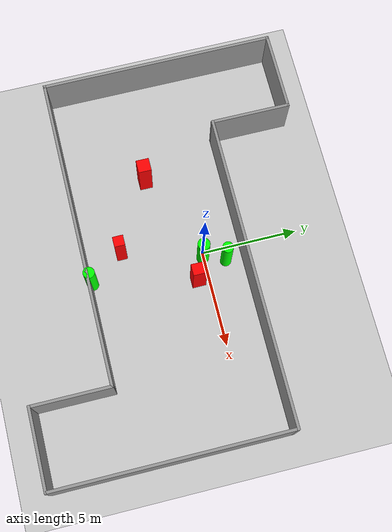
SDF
<sdf version="1.7">
 <world name="default">
  <light name="sun" type="directional">
   <pose>0 0 10 0 -0 0</pose>
   <diffuse>0.8 0.8 0.8 1</diffuse>
   <specular>0.2 0.2 0.2 1</specular>
   <attenuation>
    <range>1000</range>
    <constant>0.9</constant>
    <linear>0.01</linear>
    <quadratic>0.001</quadratic>
   </attenuation>
   <direction>-0.5 0.1 -0.9</direction>
   <spot><inner_angle>0</inner_angle><outer_angle>0</outer_angle><falloff>0</falloff></spot>
  </light>
  <model name="ground_plane">
   <static>1</static>
   <link name="link">
    <collision name="collision">
     <geometry><plane><normal>0 0 1</normal><size>100 100</size></plane></geometry>
     <surface>
      <contact><collide_bitmask>65535</collide_bitmask></contact>
      <friction><ode><mu>100</mu><mu2>50</mu2></ode></friction>
     </surface>
    </collision>
    <visual name="visual">
     <cast_shadows>0</cast_shadows>
     <geometry><plane><normal>0 0 1</normal><size>100 100</size></plane></geometry>
     <material>
      <script><uri>file://media/materials/scripts/gazebo.material</uri><name>Gazebo/Grey</name></script>
     </material>
    </visual>
   </link>
  </model>
  <gravity>0 0 -9.8</gravity>
  <magnetic_field>6e-06 2.3e-05 -4.2e-05</magnetic_field>
  <atmosphere type="adiabatic"/>
  <physics type="ode">
   <max_step_size>0.001</max_step_size>
   <real_time_factor>1</real_time_factor>
   <real_time_update_rate>1000</real_time_update_rate>
  </physics>
  <scene><ambient>0.4 0.4 0.4 1</ambient><background>0.7 0.7 0.7 1</background><shadows>1</shadows></scene>
  <spherical_coordinates>
   <surface_model>EARTH_WGS84</surface_model>
   <latitude_deg>0</latitude_deg>
   <longitude_deg>0</longitude_deg>
   <elevation>0</elevation>
   <heading_deg>0</heading_deg>
  </spherical_coordinates>
  <model name="my_base_walls">
   <link name="Wall_13">
    <collision name="Wall_13_Collision">
     <geometry><box><size>12.15 0.15 2.5</size></box></geometry>
     <pose>0 0 1.25 0 -0 0</pose>
    </collision>
    <visual name="Wall_13_Visual">
     <pose>0 0 1.25 0 -0 0</pose>
     <geometry><box><size>12.15 0.15 2.5</size></box></geometry>
     <material>
      <script><uri>file://media/materials/scripts/gazebo.material</uri><name>Gazebo/Grey</name></script>
      <ambient>1 1 1 1</ambient>
     </material>
     <meta><layer>0</layer></meta>
    </visual>
    <pose>10 -2 0 0 -0 1.5708</pose>
   </link>
   <link name="Wall_15">
    <collision name="Wall_15_Collision">
     <geometry><box><size>16.15 0.15 2.5</size></box></geometry>
     <pose>0 0 1.25 0 -0 0</pose>
    </collision>
    <visual name="Wall_15_Visual">
     <pose>0 0 1.25 0 -0 0</pose>
     <geometry><box><size>16.15 0.15 2.5</size></box></geometry>
     <material>
      <script><uri>file://media/materials/scripts/gazebo.material</uri><name>Gazebo/Grey</name></script>
      <ambient>1 1 1 1</ambient>
     </material>
     <meta><layer>0</layer></meta>
    </visual>
    <pose>2 4 0 0 -0 3.14159</pose>
   </link>
   <link name="Wall_17">
    <collision name="Wall_17_Collision">
     <geometry><box><size>4.15 0.15 2.5</size></box></geometry>
     <pose>0 0 1.25 0 -0 0</pose>
    </collision>
    <visual name="Wall_17_Visual">
     <pose>0 0 1.25 0 -0 0</pose>
     <geometry><box><size>4.15 0.15 2.5</size></box></geometry>
     <material>
      <script><uri>file://media/materials/scripts/gazebo.material</uri><name>Gazebo/Grey</name></script>
      <ambient>1 1 1 1</ambient>
     </material>
     <meta><layer>0</layer></meta>
    </visual>
    <pose>6 -6 0 0 -0 -1.5708</pose>
   </link>
   <link name="Wall_19">
    <collision name="Wall_19_Collision">
     <geometry><box><size>12.15 0.15 2.5</size></box></geometry>
     <pose>0 0 1.25 0 -0 0</pose>
    </collision>
    <visual name="Wall_19_Visual">
     <pose>0 0 1.25 0 -0 0</pose>
     <geometry><box><size>12.15 0.15 2.5</size></box></geometry>
     <material>
      <script><uri>file://media/materials/scripts/gazebo.material</uri><name>Gazebo/Grey</name></script>
      <ambient>1 1 1 1</ambient>
     </material>
     <meta><layer>0</layer></meta>
    </visual>
    <pose>-10 2 0 0 -0 1.5708</pose>
   </link>
   <link name="Wall_21">
    <collision name="Wall_21_Collision">
     <geometry><box><size>4.15 0.15 2.5</size></box></geometry>
     <pose>0 0 1.25 0 -0 0</pose>
    </collision>
    <visual name="Wall_21_Visual">
     <pose>0 0 1.25 0 -0 0</pose>
     <geometry><box><size>4.15 0.15 2.5</size></box></geometry>
     <material>
      <script><uri>file://media/materials/scripts/gazebo.material</uri><name>Gazebo/Grey</name></script>
      <ambient>1 1 1 1</ambient>
     </material>
     <meta><layer>0</layer></meta>
    </visual>
    <pose>-8 8 0 0 -0 0</pose>
   </link>
   <link name="Wall_23">
    <collision name="Wall_23_Collision">
     <geometry><box><size>4.15 0.15 2.5</size></box></geometry>
     <pose>0 0 1.25 0 -0 0</pose>
    </collision>
    <visual name="Wall_23_Visual">
     <pose>0 0 1.25 0 -0 0</pose>
     <geometry><box><size>4.15 0.15 2.5</size></box></geometry>
     <material>
      <script><uri>file://media/materials/scripts/gazebo.material</uri><name>Gazebo/Grey</name></script>
      <ambient>1 1 1 1</ambient>
     </material>
     <meta><layer>0</layer></meta>
    </visual>
    <pose>-6 6 0 0 -0 -1.5708</pose>
   </link>
   <link name="Wall_25">
    <collision name="Wall_25_Collision">
     <geometry><box><size>4.15 0.15 2.5</size></box></geometry>
     <pose>0 0 1.25 0 -0 0</pose>
    </collision>
    <visual name="Wall_25_Visual">
     <pose>0 0 1.25 0 -0 0</pose>
     <geometry><box><size>4.15 0.15 2.5</size></box></geometry>
     <material>
      <script><uri>file://media/materials/scripts/gazebo.material</uri><name>Gazebo/Grey</name></script>
      <ambient>1 1 1 1</ambient>
     </material>
     <meta><layer>0</layer></meta>
    </visual>
    <pose>8 -8 0 0 -0 0</pose>
   </link>
   <link name="Wall_9">
    <collision name="Wall_9_Collision">
     <geometry><box><size>16.15 0.15 2.5</size></box></geometry>
     <pose>0 0 1.25 0 -0 0</pose>
    </collision>
    <visual name="Wall_9_Visual">
     <pose>0 0 1.25 0 -0 0</pose>
     <geometry><box><size>16.15 0.15 2.5</size></box></geometry>
     <material>
      <script><uri>file://media/materials/scripts/gazebo.material</uri><name>Gazebo/Grey</name></script>
      <ambient>1 1 1 1</ambient>
     </material>
     <meta><layer>0</layer></meta>
    </visual>
    <pose>-2 -4 0 0 -0 3.14159</pose>
   </link>
   <static>1</static>
   <pose>-0 -2 0 0 -0 0</pose>
  </model>
  <model name="cylinder1">
   <static>1</static>
   <link name="link">
    <inertial>
     <mass>1</mass>
     <inertia><ixx>0.5</ixx><ixy>0</ixy><ixz>0</ixz><iyy>0.5</iyy><iyz>0</iyz><izz>1</izz></inertia>
    </inertial>
    <collision name="collision">
     <geometry><cylinder><radius>0.3146744221374518</radius><length>2.5</length></cylinder></geometry>
    </collision>
    <visual name="visual">
     <geometry><cylinder><radius>0.3146744221374518</radius><length>2.5</length></cylinder></geometry>
     <material>
      <ambient>0 1 0 1</ambient>
      <diffuse>0 1 0 1</diffuse>
      <specular>0.1 0.1 0.1 1</specular>
      <emissive>0 0 0 0</emissive>
     </material>
    </visual>
   </link>
   <pose>0.2524919416932754 -0.05539338753373446 1.25 0 0 0</pose>
  </model>
  <model name="cylinder2">
   <static>1</static>
   <link name="link">
    <inertial>
     <mass>1</mass>
     <inertia><ixx>0.5</ixx><ixy>0</ixy><ixz>0</ixz><iyy>0.5</iyy><iyz>0</iyz><izz>1</izz></inertia>
    </inertial>
    <collision name="collision">
     <geometry><cylinder><radius>0.2938336525948993</radius><length>2.5</length></cylinder></geometry>
    </collision>
    <visual name="visual">
     <geometry><cylinder><radius>0.2938336525948993</radius><length>2.5</length></cylinder></geometry>
     <material>
      <ambient>0 1 0 1</ambient>
      <diffuse>0 1 0 1</diffuse>
      <specular>0.1 0.1 0.1 1</specular>
      <emissive>0 0 0 0</emissive>
     </material>
    </visual>
   </link>
   <pose>0.3202792826964149 -5.88885557821303 1.25 0 0 0</pose>
  </model>
  <model name="cylinder3">
   <static>1</static>
   <link name="link">
    <inertial>
     <mass>1</mass>
     <inertia><ixx>0.5</ixx><ixy>0</ixy><ixz>0</ixz><iyy>0.5</iyy><iyz>0</iyz><izz>1</izz></inertia>
    </inertial>
    <collision name="collision">
     <geometry><cylinder><radius>0.28350080511643183</radius><length>2.5</length></cylinder></geometry>
    </collision>
    <visual name="visual">
     <geometry><cylinder><radius>0.28350080511643183</radius><length>2.5</length></cylinder></geometry>
     <material>
      <ambient>0 1 0 1</ambient>
      <diffuse>0 1 0 1</diffuse>
      <specular>0.1 0.1 0.1 1</specular>
      <emissive>0 0 0 0</emissive>
     </material>
    </visual>
   </link>
   <pose>0.6894520037503238 1.0579327017045221 1.25 0 0 0</pose>
  </model>
  <model name="box1">
   <static>1</static>
   <link name="link">
    <inertial>
     <mass>1</mass>
     <inertia><ixx>0.083</ixx><ixy>0</ixy><ixz>0</ixz><iyy>0.083</iyy><iyz>0</iyz><izz>0.083</izz></inertia>
    </inertial>
    <collision name="collision">
     <geometry><box><size>0.6587809892508816 0.664177211753989 2.5</size></box></geometry>
    </collision>
    <visual name="visual">
     <geometry><box><size>0.6587809892508816 0.664177211753989 2.5</size></box></geometry>
     <material>
      <ambient>1 0 0 1</ambient>
      <diffuse>1 0 0 1</diffuse>
      <specular>0.1 0.1 0.1 1</specular>
      <emissive>0 0 0 0</emissive>
     </material>
    </visual>
    <sensor name="my_contact" type="contact">
     <contact><collision>box_collision</collision><topic>__default_topic__</topic></contact>
    </sensor>
   </link>
   <pose>-4.503750040131228 -2.0002959882196123 1.25 0 0 0</pose>
  </model>
  <model name="box2">
   <static>1</static>
   <link name="link">
    <inertial>
     <mass>1</mass>
     <inertia><ixx>0.083</ixx><ixy>0</ixy><ixz>0</ixz><iyy>0.083</iyy><iyz>0</iyz><izz>0.083</izz></inertia>
    </inertial>
    <collision name="collision">
     <geometry><box><size>0.582260621652112 0.694748975761932 2.5</size></box></geometry>
    </collision>
    <visual name="visual">
     <geometry><box><size>0.582260621652112 0.694748975761932 2.5</size></box></geometry>
     <material>
      <ambient>1 0 0 1</ambient>
      <diffuse>1 0 0 1</diffuse>
      <specular>0.1 0.1 0.1 1</specular>
      <emissive>0 0 0 0</emissive>
     </material>
    </visual>
    <sensor name="my_contact" type="contact">
     <contact><collision>box_collision</collision><topic>__default_topic__</topic></contact>
    </sensor>
   </link>
   <pose>1.4045529581954863 -0.6012669558738271 1.25 0 0 0</pose>
  </model>
  <model name="box3">
   <static>1</static>
   <link name="link">
    <inertial>
     <mass>1</mass>
     <inertia><ixx>0.083</ixx><ixy>0</ixy><ixz>0</ixz><iyy>0.083</iyy><iyz>0</iyz><izz>0.083</izz></inertia>
    </inertial>
    <collision name="collision">
     <geometry><box><size>0.5289284305115491 0.5428586116876826 2.5</size></box></geometry>
    </collision>
    <visual name="visual">
     <geometry><box><size>0.5289284305115491 0.5428586116876826 2.5</size></box></geometry>
     <material>
      <ambient>1 0 0 1</ambient>
      <diffuse>1 0 0 1</diffuse>
      <specular>0.1 0.1 0.1 1</specular>
      <emissive>0 0 0 0</emissive>
     </material>
    </visual>
    <sensor name="my_contact" type="contact">
     <contact><collision>box_collision</collision><topic>__default_topic__</topic></contact>
    </sensor>
   </link>
   <pose>-0.9096192569500339 -4.110625083539308 1.25 0 0 0</pose>
  </model>
 </world>
</sdf>
